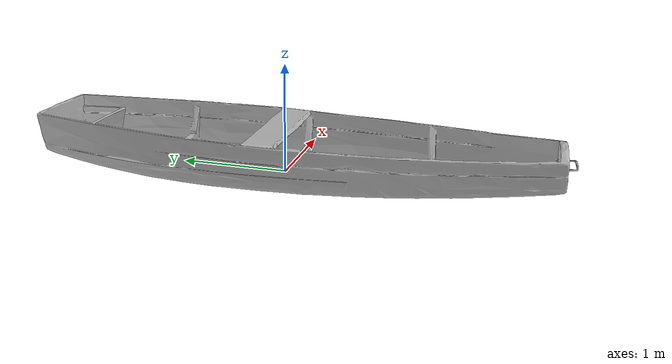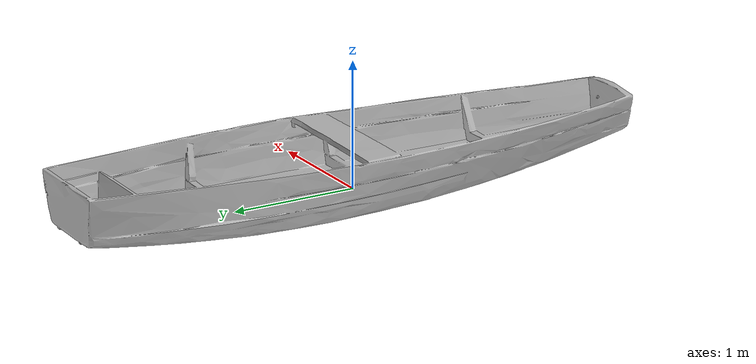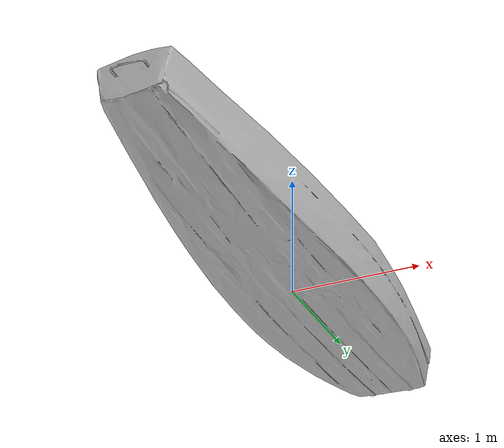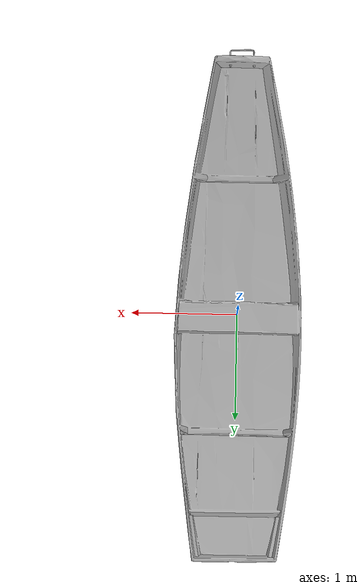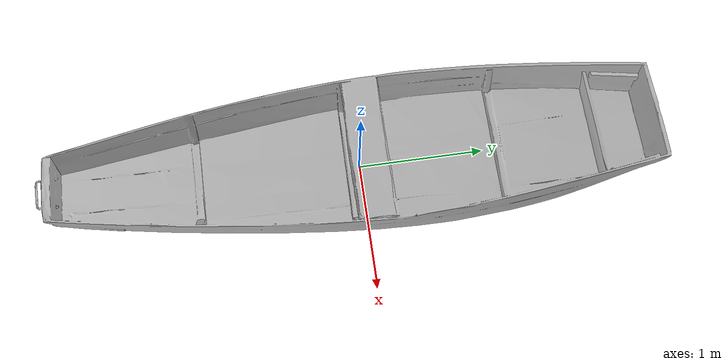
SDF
<?xml version="1.0"?>
<sdf version="1.9">
  <model name="canoe">
    <static>true</static>
    <link name="link">
      <visual name="visual">
        <!-- Source OBJ is Y-up; rotate it into Gazebo's Z-up frame. -->
        <pose>0 0 0 1.57079632679 0 0</pose>
        <geometry>
          <mesh>
            <uri>model://cmra_models/canoe/canoe.obj</uri>
            <scale>0.012 0.012 0.012</scale>
          </mesh>
        </geometry>
      </visual>
    </link>
  </model>
</sdf>
